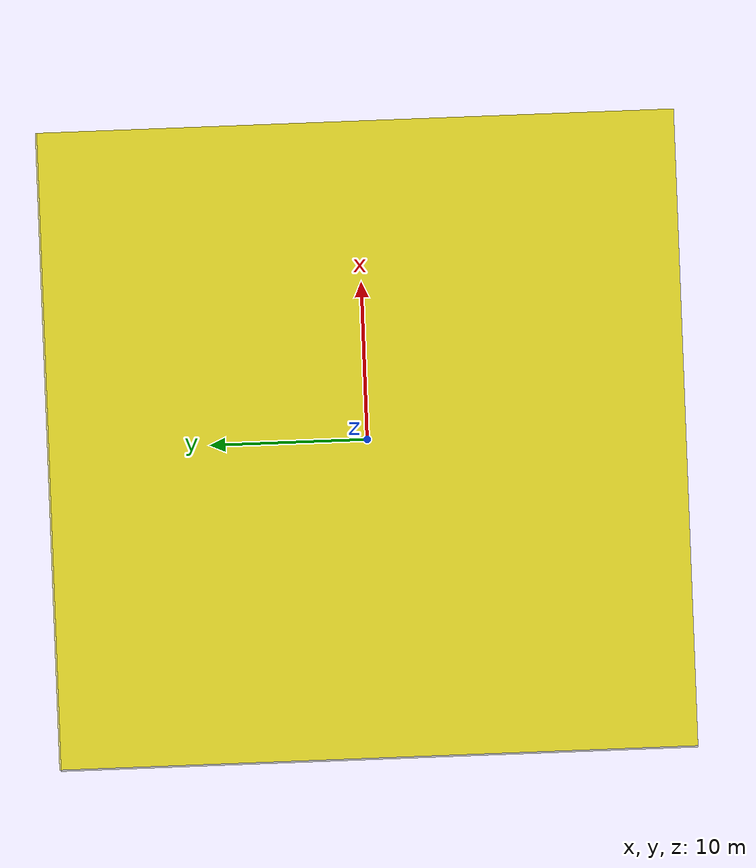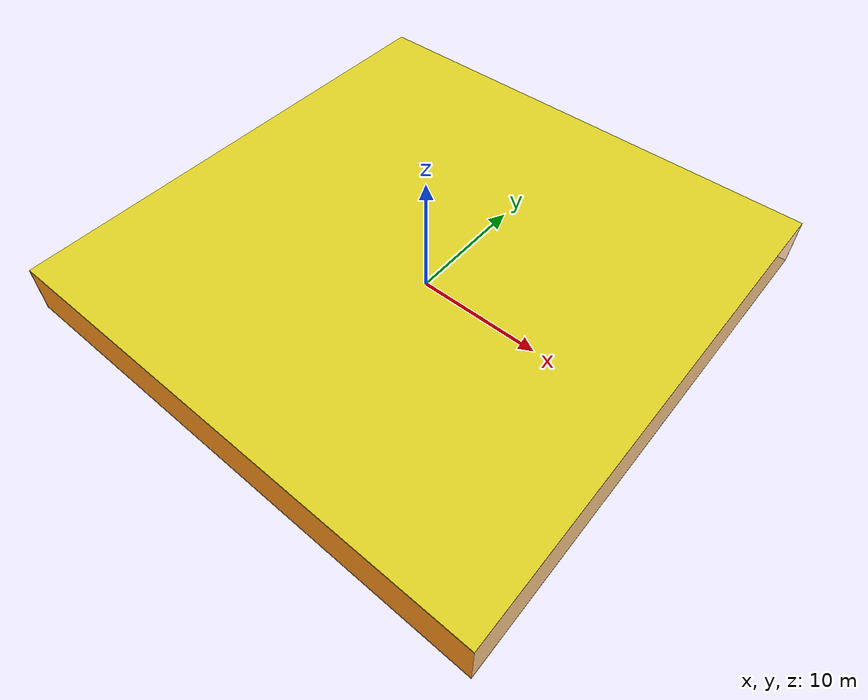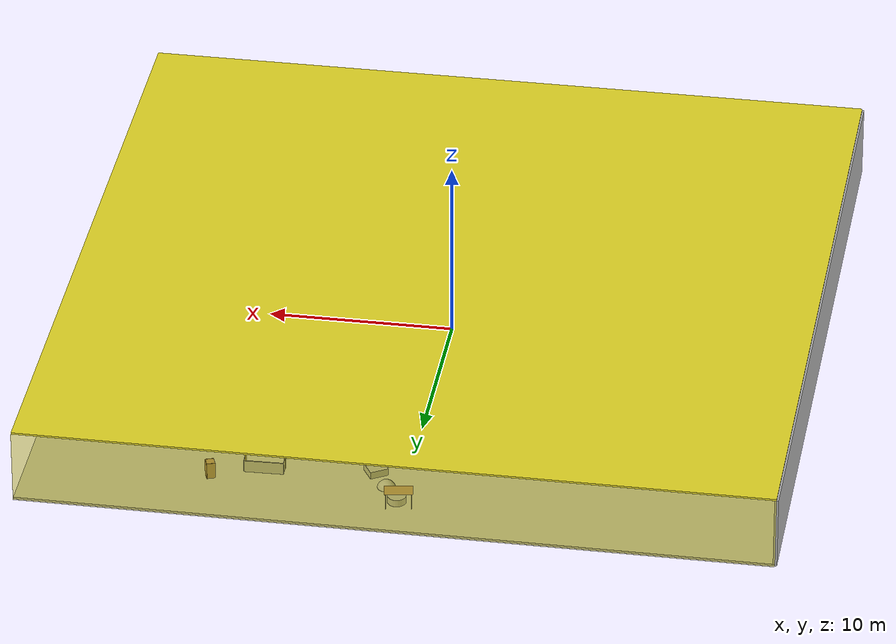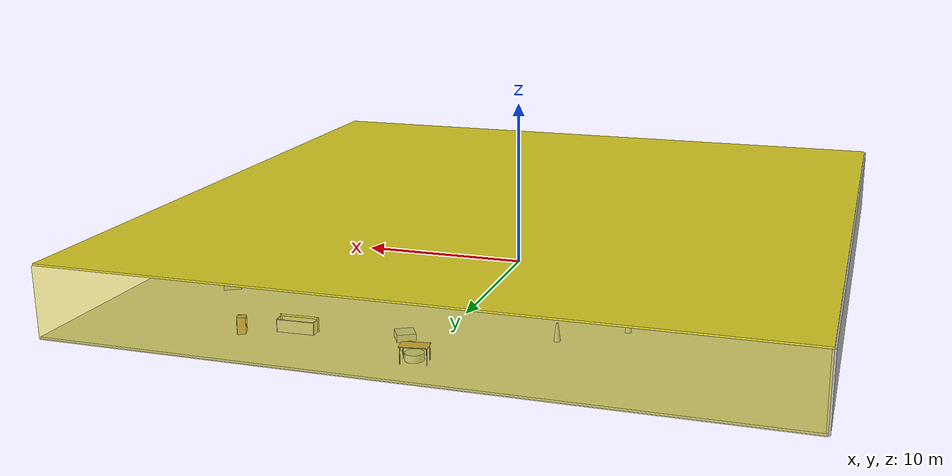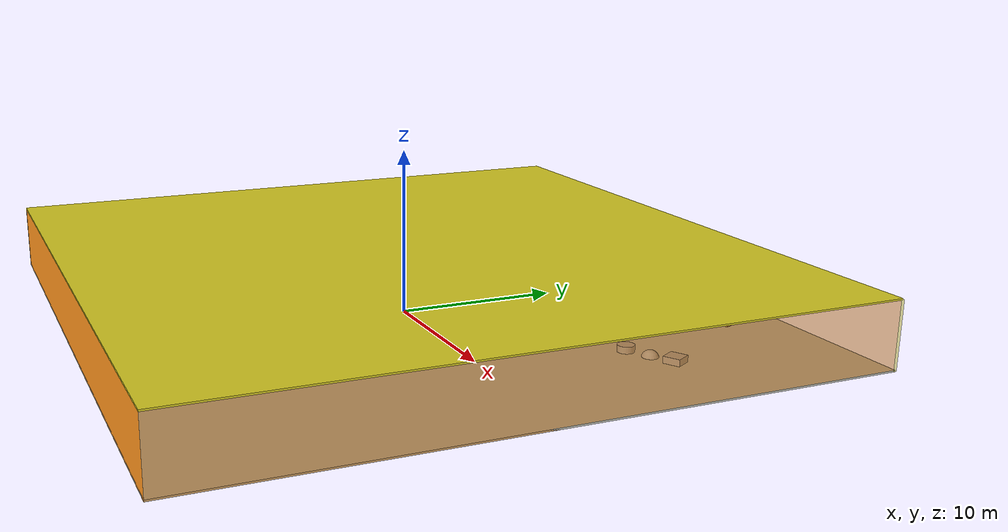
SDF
<sdf version="1.4">
 <world name="default">
  <physics type="ode">
   <max_step_size>0.001</max_step_size>
   <real_time_factor>1</real_time_factor>
   <real_time_update_rate>1000</real_time_update_rate>
   <gravity>0 0 -9.8</gravity>
  </physics>
  <scene><ambient>0.4 0.4 0.4 1</ambient><background>0.7 0.7 0.7 1</background><shadows>1</shadows></scene>
  <model name="Surrounding">
   <static>1</static>
   <link name="Ceiling">
    <collision name="Ceiling_Collision"><geometry><box><size>40 40 0.1</size></box></geometry></collision>
    <visual name="Ceiling_Visual">
     <geometry><box><size>40 40 0.1</size></box></geometry>
     <material>
      <script><uri>file://media/materials/scripts/gazebo.material</uri><name>Gazebo/Yellow</name></script>
     </material>
    </visual>
    <pose>0 0 4.05 0 0 0</pose>
   </link>
   <link name="Wall_South">
    <collision name="Wall_South_Collision">
     <geometry><box><size>40 0 4</size></box></geometry>
     <pose>0 0 2 0 -0 0</pose>
    </collision>
    <visual name="Wall_South_Visual">
     <pose>0 0 2 0 -0 0</pose>
     <geometry><box><size>40 0 4</size></box></geometry>
     <material>
      <script><uri>file://media/materials/scripts/gazebo.material</uri><name>Gazebo/Orange</name></script>
     </material>
    </visual>
    <velocity_decay><linear>0</linear><angular>0</angular></velocity_decay>
    <pose>0 -20 0 0 -0 0</pose>
   </link>
   <link name="Wall_East">
    <collision name="Wall_21_Collision">
     <geometry><box><size>40 0 4</size></box></geometry>
     <pose>0 0 2 0 -0 0</pose>
    </collision>
    <visual name="Wall_21_Visual">
     <pose>0 0 2 0 -0 0</pose>
     <geometry><box><size>40 0 4</size></box></geometry>
     <material>
      <script>
       <uri>file://media/materials/scripts/gazebo.material</uri>
       <name>Gazebo/OrangeTransparent</name>
      </script>
     </material>
    </visual>
    <velocity_decay><linear>0</linear><angular>0</angular></velocity_decay>
    <pose>20 0 0 0 -0 1.5708</pose>
   </link>
   <link name="Wall_North">
    <collision name="Wall_22_Collision">
     <geometry><box><size>40 0.2 4</size></box></geometry>
     <pose>0 0 2 0 -0 0</pose>
    </collision>
    <visual name="Wall_22_Visual">
     <pose>0 0 2 0 -0 0</pose>
     <geometry><box><size>40 0.2 4</size></box></geometry>
     <material>
      <script>
       <uri>file://media/materials/scripts/gazebo.material</uri>
       <name>Gazebo/YellowTransparent</name>
      </script>
     </material>
    </visual>
    <velocity_decay><linear>0</linear><angular>0</angular></velocity_decay>
    <pose>0 20 0 0 -0 0</pose>
   </link>
   <link name="Wall_West">
    <collision name="Wall_23_Collision">
     <geometry><box><size>40 0.2 4</size></box></geometry>
     <pose>0 0 2 0 -0 0</pose>
    </collision>
    <visual name="Wall_23_Visual">
     <pose>0 0 2 0 -0 0</pose>
     <geometry><box><size>40 0.2 4</size></box></geometry>
     <material>
      <script><uri>file://media/materials/scripts/gazebo.material</uri><name>Gazebo/CloudySky</name></script>
     </material>
    </visual>
    <velocity_decay><linear>0</linear><angular>0</angular></velocity_decay>
    <pose>-20 0 0 0 0 -1.5708</pose>
   </link>
   <link name="Ground_link">
    <collision name="collision">
     <pose>0 0 .05 0 -0 0</pose>
     <geometry><box><size>40 40 0.1</size></box></geometry>
    </collision>
    <visual name="visual">
     <pose>0 0 .05 0 -0 0</pose>
     <geometry><box><size>40 40 0.1</size></box></geometry>
     <material>
      <script><uri>file://media/materials/scripts/gazebo.material</uri><name>Gazebo/PaintedWall</name></script>
     </material>
    </visual>
   </link>
   <static>1</static>
  </model>
  <spherical_coordinates>
   <surface_model>EARTH_WGS84</surface_model>
   <latitude_deg>0</latitude_deg>
   <longitude_deg>0</longitude_deg>
   <elevation>0</elevation>
   <heading_deg>0</heading_deg>
  </spherical_coordinates>
  <light name="lightball_0" type="diffuse">
   <diffuse>0.8 0.8 0.8 1</diffuse>
   <specular>0.2 0.2 0.2 1</specular>
   <attenuation>
    <range>100</range>
    <constant>0.7</constant>
    <linear>0.01</linear>
    <quadratic>0.001</quadratic>
   </attenuation>
   <direction>-0.5 0.1 -0.9</direction>
   <pose>-14.5272620561 -13.5033753078 3.15503995737 0 0 0</pose>
  </light>
  <include><uri>model://cabinet</uri><pose>-15.6409520295 -5.84984464598 0 0 0 0.0639634111654</pose></include>
  <include>
   <uri>model://construction_cone</uri>
   <pose>-12.0116200474 1.59152243425 0 0 0 0.134044425808</pose>
  </include>
  <include><uri>model://table</uri><pose>-9.4275491751 -11.5054275614 0 0 0 0.396433957602</pose></include>
  <include>
   <uri>model://construction_cone</uri>
   <pose>-9.19743264334 10.4342897359 0 0 0 1.09446331961</pose>
  </include>
  <include><uri>model://cabinet</uri><pose>-6.28865827982 -14.1775467235 0 0 0 0.467542601814</pose></include>
  <include>
   <uri>model://construction_cone</uri>
   <pose>-5.94259037364 12.7651395548 0 0 0 2.90284203908</pose>
  </include>
  <include><uri>model://cabinet</uri><pose>-3.39736167835 -17.2998592405 0 0 0 0.767673048831</pose></include>
  <include><uri>model://table</uri><pose>-1.42433959768 -13.440370823 0 0 0 0.62413144211</pose></include>
  <include>
   <uri>model://construction_cone</uri>
   <pose>-0.354624595704 -6.52418603943 0 0 0 2.98164872464</pose>
  </include>
  <include>
   <uri>model://textured_shapes</uri>
   <pose>0.932193391172 16.0026596687 0 0 0 0.538063405278</pose>
  </include>
  <include><uri>model://table</uri><pose>0.0261244756285 17.5833925486 0 0 0 0.160240035111</pose></include>
  <include>
   <uri>model://robocup_3Dsim_goal</uri>
   <pose>3.60942508068 -5.74194768725 0 0 0 2.30301524</pose>
  </include>
  <include><uri>model://cabinet</uri><pose>3.04231113319 -2.27751135786 0 0 0 0.360828921406</pose></include>
  <include><uri>model://table</uri><pose>2.49464034133 0.0602138979452 0 0 0 2.57336925889</pose></include>
  <include>
   <uri>model://robocup_3Dsim_goal</uri>
   <pose>6.36161213541 2.45004764263 0 0 0 0.379090894519</pose>
  </include>
  <include>
   <uri>model://robocup_3Dsim_goal</uri>
   <pose>7.5186417748 15.1358821365 0 0 0 1.59734997192</pose>
  </include>
  <include>
   <uri>model://robocup_3Dsim_goal</uri>
   <pose>9.11500956249 -7.76203160746 0 0 0 2.67021611536</pose>
  </include>
  <include><uri>model://cabinet</uri><pose>8.60831857709 -1.88120759976 0 0 0 0.370895382764</pose></include>
  <include><uri>model://cabinet</uri><pose>10.2095767371 16.4053246147 0 0 0 0.360976148498</pose></include>
  <include>
   <uri>model://textured_shapes</uri>
   <pose>13.1676092019 9.1421046024 0 0 0 2.08290595027</pose>
  </include>
 </world>
</sdf>

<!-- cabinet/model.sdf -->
<sdf version="1.5">
  <model name="cabinet">
    <static>true</static>
    <link name="cabinet_bottom_plate">
      <inertial>
        <pose>0 0 -1 0 0 0</pose>
        <inertia>
          <ixx>2.050000</ixx>
          <ixy>0</ixy>
          <ixz>0</ixz>
          <iyy>2.050000</iyy>
          <iyz>0</iyz>
          <izz>2.050000</izz>
        </inertia>
        <mass>25.000000</mass>
      </inertial>
      <collision name="cabinet_bottom_plate_geom">
        <pose>0 0 0.010000 0 0 0</pose>
        <geometry>
          <box>
            <size>0.450000 0.450000 0.020000</size>
          </box>
        </geometry>
      </collision>
      <visual name="cabinet_bottom_plate_geom_visual">
        <pose>0 0 0.010000 0 0 0</pose>
        <geometry>
          <box>
            <size>0.450000 0.450000 0.020000</size>
          </box>
        </geometry>
        <material>
          <script>
            <uri>model://media/materials/scripts/gazebo.material</uri>
            <name>Gazebo/Wood</name>
          </script>
        </material>
      </visual>
      <collision name="cabinet_bottom_plate_geom_cabinet_back_plate">
        <pose>0.235000 0 0.510000 0 0 0</pose>
        <geometry>
          <box>
            <size>0.020000 0.450000 1.020000</size>
          </box>
        </geometry>
      </collision>
      <visual name="cabinet_bottom_plate_geom_cabinet_back_plate_visual">
        <pose>0.235000 0 0.510000 0 0 0</pose>
        <geometry>
          <box>
            <size>0.020000 0.450000 1.020000</size>
          </box>
        </geometry>
        <material>
          <script>
            <uri>model://media/materials/scripts/gazebo.material</uri>
            <name>Gazebo/Wood</name>
          </script>
        </material>
      </visual>
      <collision name="cabinet_bottom_plate_geom_cabinet_left_plate">
        <pose>0 0.235000 0.510000 0 0 0</pose>
        <geometry>
          <box>
            <size>0.450000 0.020000 1.020000</size>
          </box>
        </geometry>
      </collision>
      <visual name="cabinet_bottom_plate_geom_cabinet_left_plate_visual">
        <pose>0 0.235000 0.510000 0 0 0</pose>
        <geometry>
          <box>
            <size>0.450000 0.020000 1.020000</size>
          </box>
        </geometry>
        <material>
          <script>
            <uri>model://media/materials/scripts/gazebo.material</uri>
            <name>Gazebo/Wood</name>
          </script>
        </material>
      </visual>
      <collision name="cabinet_bottom_plate_geom_cabinet_middle_plate">
        <pose>0 0 0.510000 0 0 0</pose>
        <geometry>
          <box>
            <size>0.450000 0.450000 0.020000</size>
          </box>
        </geometry>
      </collision>
      <visual name="cabinet_bottom_plate_geom_cabinet_middle_plate_visual">
        <pose>0 0 0.510000 0 0 0</pose>
        <geometry>
          <box>
            <size>0.450000 0.450000 0.020000</size>
          </box>
        </geometry>
        <material>
          <script>
            <uri>model://media/materials/scripts/gazebo.material</uri>
            <name>Gazebo/Wood</name>
          </script>
        </material>
      </visual>
      <collision name="cabinet_bottom_plate_geom_cabinet_right_plate">
        <pose>0 -0.235000 0.510000 0 0 0</pose>
        <geometry>
          <box>
            <size>0.450000 0.020000 1.020000</size>
          </box>
        </geometry>
      </collision>
      <visual name="cabinet_bottom_plate_geom_cabinet_right_plate_visual">
        <pose>0 -0.235000 0.510000 0 0 0</pose>
        <geometry>
          <box>
            <size>0.450000 0.020000 1.020000</size>
          </box>
        </geometry>
        <material>
          <script>
            <uri>model://media/materials/scripts/gazebo.material</uri>
            <name>Gazebo/Wood</name>
          </script>
        </material>
      </visual>
      <collision name="cabinet_bottom_plate_geom_cabinet_top_plate">
        <pose>0 0 1.010000 0 0 0</pose>
        <geometry>
          <box>
            <size>0.450000 0.450000 0.020000</size>
          </box>
        </geometry>
      </collision>
      <visual name="cabinet_bottom_plate_geom_cabinet_top_plate_visual">
        <pose>0 0 1.010000 0 0 0</pose>
        <geometry>
          <box>
            <size>0.450000 0.450000 0.020000</size>
          </box>
        </geometry>
        <material>
          <script>
            <uri>model://media/materials/scripts/gazebo.material</uri>
            <name>Gazebo/Wood</name>
          </script>
        </material>
      </visual>
    </link>
  </model>
</sdf>

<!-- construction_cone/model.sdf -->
<sdf version="1.5">
  <model name="Construction Cone">
    <link name="link">
      <collision name="collision">
        <geometry>
          <mesh>
            <scale>10 10 10</scale>
            <uri>file://isr-testbed/construction_cone/meshes/construction_cone.dae</uri>
          </mesh>
        </geometry>
      </collision>
      <visual name="visual">
        <geometry>
          <mesh>
            <scale>10 10 10</scale>
            <uri>file://isr-testbed/construction_cone/meshes/construction_cone.dae</uri>
          </mesh>
        </geometry>
      </visual>
    </link>
  </model>
</sdf>

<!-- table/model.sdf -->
<sdf version="1.5">
  <model name="table">
    <static>true</static>
    <link name="link">
      <collision name="surface">
        <pose>0 0 1.0 0 0 0</pose>
        <geometry>
          <box>
            <size>1.5 0.8 0.03</size>
          </box>
        </geometry>
        <surface>
          <friction>
            <ode>
              <mu>0.6</mu>
              <mu2>0.6</mu2>
            </ode>
          </friction>
        </surface>
      </collision>
      <visual name="visual1">
        <pose>0 0 1.0 0 0 0</pose>
        <geometry>
          <box>
            <size>1.5 0.8 0.03</size>
          </box>
        </geometry>
        <material>
          <script>
            <uri>model://media/materials/scripts/gazebo.material</uri>
            <name>Gazebo/Wood</name>
          </script>
        </material>
      </visual>
      <collision name="front_left_leg">
        <pose>0.68 0.38 0.5 0 0 0</pose>
        <geometry>
          <cylinder>
            <radius>0.02</radius>
            <length>1.0</length>
          </cylinder>
        </geometry>
      </collision>
      <visual name="front_left_leg">
        <pose>0.68 0.38 0.5 0 0 0</pose>
        <geometry>
          <cylinder>
            <radius>0.02</radius>
            <length>1.0</length>
          </cylinder>
        </geometry>
        <material>
          <script>
            <uri>model://media/materials/scripts/gazebo.material</uri>
            <name>Gazebo/Grey</name>
          </script>
        </material>
      </visual>
      <collision name="front_right_leg">
        <pose>0.68 -0.38 0.5 0 0 0</pose>
        <geometry>
          <cylinder>
            <radius>0.02</radius>
            <length>1.0</length>
          </cylinder>
        </geometry>
      </collision>
      <visual name="front_right_leg">
        <pose>0.68 -0.38 0.5 0 0 0</pose>
        <geometry>
          <cylinder>
            <radius>0.02</radius>
            <length>1.0</length>
          </cylinder>
        </geometry>
        <material>
          <script>
            <uri>model://media/materials/scripts/gazebo.material</uri>
            <name>Gazebo/Grey</name>
          </script>
        </material>
      </visual>
      <collision name="back_right_leg">
        <pose>-0.68 -0.38 0.5 0 0 0</pose>
        <geometry>
          <cylinder>
            <radius>0.02</radius>
            <length>1.0</length>
          </cylinder>
        </geometry>
      </collision>
      <visual name="back_right_leg">
        <pose>-0.68 -0.38 0.5 0 0 0</pose>
        <geometry>
          <cylinder>
            <radius>0.02</radius>
            <length>1.0</length>
          </cylinder>
        </geometry>
        <material>
          <script>
            <uri>model://media/materials/scripts/gazebo.material</uri>
            <name>Gazebo/Grey</name>
          </script>
        </material>
      </visual>
      <collision name="back_left_leg">
        <pose>-0.68 0.38 0.5 0 0 0</pose>
        <geometry>
          <cylinder>
            <radius>0.02</radius>
            <length>1.0</length>
          </cylinder>
        </geometry>
      </collision>
      <visual name="back_left_leg">
        <pose>-0.68 0.38 0.5 0 0 0</pose>
        <geometry>
          <cylinder>
            <radius>0.02</radius>
            <length>1.0</length>
          </cylinder>
        </geometry>
        <material>
          <script>
            <uri>model://media/materials/scripts/gazebo.material</uri>
            <name>Gazebo/Grey</name>
          </script>
        </material>
      </visual>
    </link>
  </model>
</sdf>

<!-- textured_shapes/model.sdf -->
<sdf version="1.6">
  <model name="textured_shapes">
    <pose>0 0 0.5 0 0 0</pose>
    <link name="box">
      <pose>0 -1.5 0 0 0 0</pose>
      <collision name="collision">
        <geometry>
          <box>
            <size>1 1 1</size>
          </box>
        </geometry>
      </collision>
      <visual name="visual">
        <geometry>
          <box>
            <size>1 1 1</size>
          </box>
        </geometry>
        <material>
          <script>
            <uri>model://../model_source/models/textured_shapes/materials/scripts</uri>
            <uri>model://../model_source/models/textured_shapes/materials/textures</uri>
            <name>TexturedShape/Squares</name>
          </script>
        </material>
      </visual>
    </link>
    <link name="sphere">
      <collision name="collision">
        <geometry>
          <sphere>
            <radius>0.5</radius>
          </sphere>
        </geometry>
      </collision>
      <visual name="visual">
        <geometry>
          <sphere>
            <radius>0.5</radius>
          </sphere>
        </geometry>
        <material>
          <script>
            <uri>model://../model_source/models/textured_shapes/materials/scripts</uri>
            <uri>model://../model_source/models/textured_shapes/materials/textures</uri>
            <name>TexturedShape/Squares</name>
          </script>
        </material>
      </visual>
    </link>
    <link name="cylinder">
      <pose>0 1.5 0 0 0 0</pose>
      <collision name="collision">
        <geometry>
          <cylinder>
            <radius>0.5</radius>
            <length>1</length>
          </cylinder>
        </geometry>
      </collision>
      <visual name="visual">
        <geometry>
          <cylinder>
            <radius>0.5</radius>
            <length>1</length>
          </cylinder>
        </geometry>
        <material>
          <script>
            <uri>model://../model_source/models/textured_shapes/materials/scripts</uri>
            <uri>model://../model_source/models/textured_shapes/materials/textures</uri>
            <name>TexturedShape/Squares</name>
          </script>
        </material>
      </visual>
    </link>
  </model>
</sdf>

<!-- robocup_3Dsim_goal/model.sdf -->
<sdf version="1.5">
  <model name="robocup_3d_goal">
    <static>true</static>
    <link name="left_post">
      <pose>0 1.05 0.45 0 0 0</pose>
      <collision name="collision">
        <geometry>
          <cylinder>
            <radius>0.05</radius>
            <length>0.9</length>
          </cylinder>
        </geometry>
      </collision>
      <visual name="visual">
        <geometry>
          <cylinder>
            <radius>0.05</radius>
            <length>0.9</length>
          </cylinder>
        </geometry>
        <material>
          <script>
            <uri>file://media/materials/scripts/gazebo.material</uri>
            <name>Gazebo/ZincYellow</name>
          </script>
        </material>
      </visual>
    </link>
    <link name="left_support_horiz_lower">
      <pose>0.30 1.05 0.01 0 0 0</pose>
      <collision name="collision">
        <geometry>
          <box>
            <size>0.50 0.02 0.02</size>
          </box>
        </geometry>
      </collision>
      <visual name="visual">
        <geometry>
          <box>
            <size>0.50 0.02 0.02</size>
          </box>
        </geometry>
        <material>
          <script>
            <uri>file://media/materials/scripts/gazebo.material</uri>
            <name>Gazebo/White</name>
          </script>
        </material>
      </visual>
    </link>
    <link name="left_support_horiz_upper">
      <pose>0.30 1.05 0.79 0 0 0</pose>
      <collision name="collision">
        <geometry>
          <box>
            <size>0.50 0.02 0.02</size>
          </box>
        </geometry>
      </collision>
      <visual name="visual">
        <geometry>
          <box>
            <size>0.50 0.02 0.02</size>
          </box>
        </geometry>
        <material>
          <script>
            <uri>file://media/materials/scripts/gazebo.material</uri>
            <name>Gazebo/White</name>
          </script>
        </material>
      </visual>
    </link>
    <link name="left_support_vertical">
      <pose>0.56 1.05 0.4 0 1.5708 0</pose>
      <collision name="collision">
        <geometry>
          <box>
            <size>0.80 0.02 0.02</size>
          </box>
        </geometry>
      </collision>
      <visual name="visual">
        <geometry>
          <box>
            <size>0.80 0.02 0.02</size>
          </box>
        </geometry>
        <material>
          <script>
            <uri>file://media/materials/scripts/gazebo.material</uri>
            <name>Gazebo/White</name>
          </script>
        </material>
      </visual>
    </link>
    <link name="right_support_horiz_lower">
      <pose>0.30 -1.05 0.01 0 0 0</pose>
      <collision name="collision">
        <geometry>
          <box>
            <size>0.50 0.02 0.02</size>
          </box>
        </geometry>
      </collision>
      <visual name="visual">
        <geometry>
          <box>
            <size>0.50 0.02 0.02</size>
          </box>
        </geometry>
        <material>
          <script>
            <uri>file://media/materials/scripts/gazebo.material</uri>
            <name>Gazebo/White</name>
          </script>
        </material>
      </visual>
    </link>
    <link name="right_support_horiz_upper">
      <pose>0.30 -1.05 0.79 0 0 0</pose>
      <collision name="collision">
        <geometry>
          <box>
            <size>0.50 0.02 0.02</size>
          </box>
        </geometry>
      </collision>
      <visual name="visual">
        <geometry>
          <box>
            <size>0.50 0.02 0.02</size>
          </box>
        </geometry>
        <material>
          <script>
            <uri>file://media/materials/scripts/gazebo.material</uri>
            <name>Gazebo/White</name>
          </script>
        </material>
      </visual>
    </link>
    <link name="right_support_vertical">
      <pose>0.56 -1.05 0.4 0 1.5708 0</pose>
      <collision name="collision">
        <geometry>
          <box>
            <size>0.80 0.02 0.02</size>
          </box>
        </geometry>
      </collision>
      <visual name="visual">
        <geometry>
          <box>
            <size>0.80 0.02 0.02</size>
          </box>
        </geometry>
        <material>
          <script>
            <uri>file://media/materials/scripts/gazebo.material</uri>
            <name>Gazebo/White</name>
          </script>
        </material>
      </visual>
    </link>
    <link name="center_support_horiz_lower">
      <pose>0.56 0 0.01 0 1.5708 0</pose>
      <collision name="collision">
        <geometry>
          <box>
            <size>0.02 2.08 0.02</size>
          </box>
        </geometry>
      </collision>
      <visual name="visual">
        <geometry>
          <box>
            <size>0.02 2.08 0.02</size>
          </box>
        </geometry>
        <material>
          <script>
            <uri>file://media/materials/scripts/gazebo.material</uri>
            <name>Gazebo/White</name>
          </script>
        </material>
      </visual>
    </link>
    <link name="center_support_horiz_upper">
      <pose>0.56 0 0.79 0 1.5708 0</pose>
      <collision name="collision">
        <geometry>
          <box>
            <size>0.02 2.08 0.02</size>
          </box>
        </geometry>
      </collision>
      <visual name="visual">
        <geometry>
          <box>
            <size>0.02 2.08 0.02</size>
          </box>
        </geometry>
        <material>
          <script>
            <uri>file://media/materials/scripts/gazebo.material</uri>
            <name>Gazebo/White</name>
          </script>
        </material>
      </visual>
    </link>
    <link name="right_post">
      <pose>0 -1.05 0.45 0 0 0</pose>
      <collision name="collision">
        <geometry>
          <cylinder>
            <radius>0.05</radius>
            <length>0.9</length>
          </cylinder>
        </geometry>
      </collision>
      <visual name="visual">
        <geometry>
          <cylinder>
            <radius>0.05</radius>
            <length>0.9</length>
          </cylinder>
        </geometry>
        <material>
          <script>
            <uri>file://media/materials/scripts/gazebo.material</uri>
            <name>Gazebo/ZincYellow</name>
          </script>
        </material>
      </visual>
    </link>
    <link name="crossbar">
      <pose>0 0 0.85 1.57 1.57 0</pose>
      <collision name="collision">
        <geometry>
          <cylinder>
            <radius>0.05</radius>
            <length>2.0</length>
          </cylinder>
        </geometry>
      </collision>
      <visual name="visual">
        <geometry>
          <cylinder>
            <radius>0.05</radius>
            <length>2.0</length>
          </cylinder>
        </geometry>
        <material>
          <script>
            <uri>file://media/materials/scripts/gazebo.material</uri>
            <name>Gazebo/ZincYellow</name>
          </script>
        </material>
      </visual>
    </link>
    <link name="center_net">
      <pose>0.56 0 0.40 0 0 0</pose>
      <collision name="collision">
        <geometry>
          <box>
            <size>0.01 2.1 0.80</size>
          </box>
        </geometry>
      </collision>
      <visual name="visual">
        <geometry>
          <box>
            <size>0.01 2.1 0.80</size>
          </box>
        </geometry>
        <material>
          <script>
            <uri>model://../model_source/models/robocup09_spl_field/materials/scripts/</uri>
            <uri>model://../model_source/models/robocup09_spl_field/materials/textures/</uri>
            <name>RoboCup/Net</name>
          </script>
        </material>
      </visual>
    </link>
    <link name="left_net">
      <pose>0.30 1.05 0.40 0 0 0</pose>
      <collision name="collision">
        <geometry>
          <box>
            <size>0.50 0.01 0.76</size>
          </box>
        </geometry>
      </collision>
      <visual name="visual">
        <geometry>
          <box>
            <size>0.50 0.01 0.76</size>
          </box>
        </geometry>
        <material>
          <script>
            <uri>model://../model_source/models/robocup09_spl_field/materials/scripts/</uri>
            <uri>model://../model_source/models/robocup09_spl_field/materials/textures/</uri>
            <name>RoboCup/Net</name>
          </script>
        </material>
      </visual>
    </link>
    <link name="right_net">
      <pose>0.30 -1.05 0.40 0 0 0</pose>
      <collision name="collision">
        <geometry>
          <box>
            <size>0.50 0.01 0.76</size>
          </box>
        </geometry>
      </collision>
      <visual name="visual">
        <geometry>
          <box>
            <size>0.50 0.01 0.76</size>
          </box>
        </geometry>
        <material>
          <script>
            <uri>model://../model_source/models/robocup09_spl_field/materials/scripts/</uri>
            <uri>model://../model_source/models/robocup09_spl_field/materials/textures/</uri>
            <name>RoboCup/Net</name>
          </script>
        </material>
      </visual>
    </link>
  </model>
</sdf>
